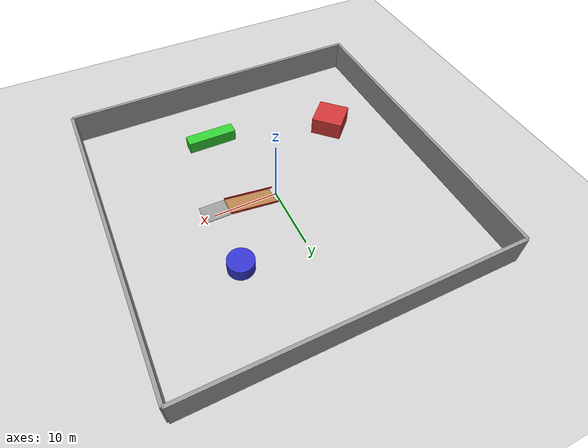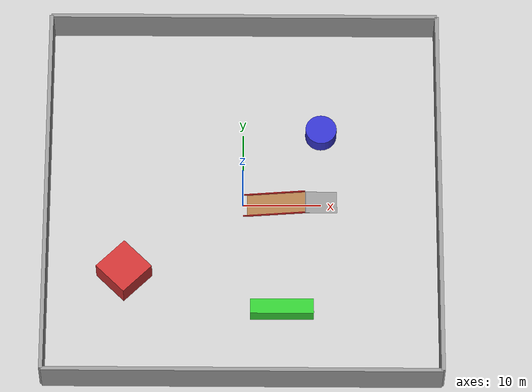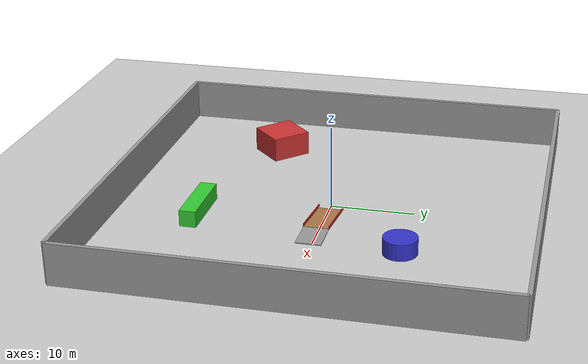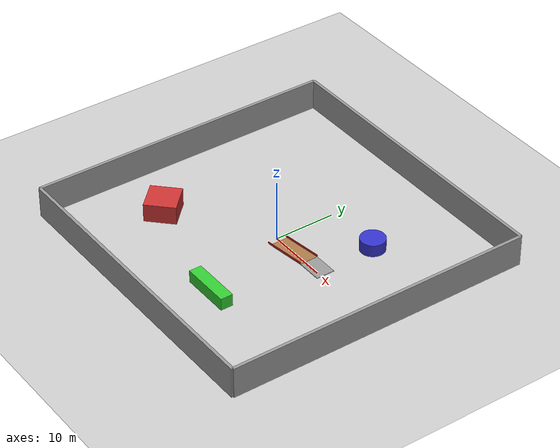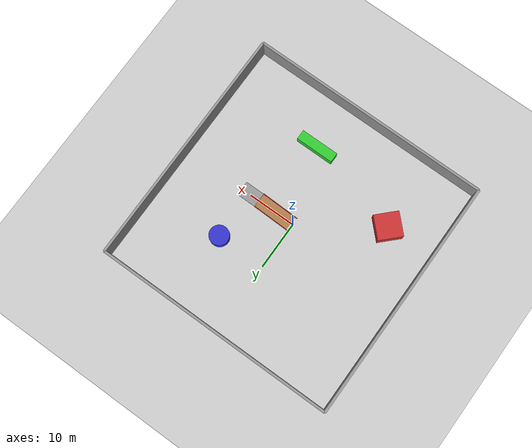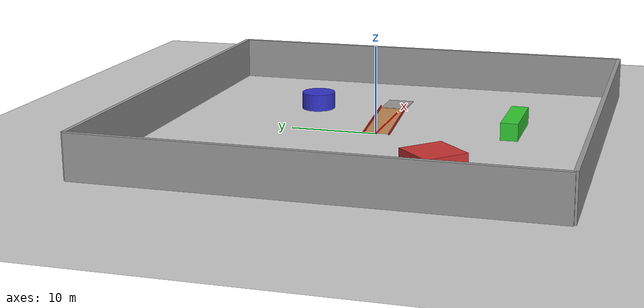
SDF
<?xml version="1.0" ?>
<sdf version="1.6">
  <world name="enclosed_large_world">
    <include>
      <uri>model://sun</uri>
    </include>
    <include>
      <uri>model://ground_plane</uri>
    </include>

    <!-- Wall North -->
    <model name="wall_north">
      <pose>0 25 2.5 0 0 0</pose>
      <link name="link">
        <collision name="collision">
          <geometry>
            <box><size>50 0.5 5</size></box>
          </geometry>
        </collision>
        <visual name="visual">
          <geometry>
            <box><size>50 0.5 5</size></box>
          </geometry>
          <material><ambient>0.6 0.6 0.6 1</ambient></material>
        </visual>
      </link>
      <static>true</static>
    </model>

    <!-- Wall South -->
    <model name="wall_south">
      <pose>0 -25 2.5 0 0 0</pose>
      <link name="link">
        <collision name="collision">
          <geometry>
            <box><size>50 0.5 5</size></box>
          </geometry>
        </collision>
        <visual name="visual">
          <geometry>
            <box><size>50 0.5 5</size></box>
          </geometry>
          <material><ambient>0.6 0.6 0.6 1</ambient></material>
        </visual>
      </link>
      <static>true</static>
    </model>

    <!-- Wall East -->
    <model name="wall_east">
      <pose>25 0 2.5 0 0 0</pose>
      <link name="link">
        <collision name="collision">
          <geometry>
            <box><size>0.5 50 5</size></box>
          </geometry>
        </collision>
        <visual name="visual">
          <geometry>
            <box><size>0.5 50 5</size></box>
          </geometry>
          <material><ambient>0.6 0.6 0.6 1</ambient></material>
        </visual>
      </link>
      <static>true</static>
    </model>

    <!-- Wall West -->
    <model name="wall_west">
      <pose>-25 0 2.5 0 0 0</pose>
      <link name="link">
        <collision name="collision">
          <geometry>
            <box><size>0.5 50 5</size></box>
          </geometry>
        </collision>
        <visual name="visual">
          <geometry>
            <box><size>0.5 50 5</size></box>
          </geometry>
          <material><ambient>0.6 0.6 0.6 1</ambient></material>
        </visual>
      </link>
      <static>true</static>
    </model>

    <!-- Some Inner Obstacles -->
    <model name="obstacle_1">
      <pose>10 10 1 0 0 0</pose>
      <link name="link">
        <collision name="collision">
          <geometry>
            <cylinder><radius>2</radius><length>2</length></cylinder>
          </geometry>
        </collision>
        <visual name="visual">
          <geometry>
            <cylinder><radius>2</radius><length>2</length></cylinder>
          </geometry>
          <material><ambient>0.2 0.2 0.8 1</ambient></material>
        </visual>
      </link>
      <static>true</static>
    </model>

    <model name="obstacle_2">
      <pose>-15 -10 1.5 0 0 0.785</pose>
      <link name="link">
        <collision name="collision">
          <geometry>
            <box><size>5 5 3</size></box>
          </geometry>
        </collision>
        <visual name="visual">
          <geometry>
            <box><size>5 5 3</size></box>
          </geometry>
          <material><ambient>0.8 0.2 0.2 1</ambient></material>
        </visual>
      </link>
      <static>true</static>
    </model>

    <model name="obstacle_3">
      <pose>5 -15 1 0 0 0</pose>
      <link name="link">
        <collision name="collision">
          <geometry>
            <box><size>8 2 2</size></box>
          </geometry>
        </collision>
        <visual name="visual">
          <geometry>
            <box><size>8 2 2</size></box>
          </geometry>
          <material><ambient>0.2 0.8 0.2 1</ambient></material>
        </visual>
      </link>
      <static>true</static>
    </model>

    <!-- 爬坡测试场地 (Ramp/Slope) -->
    <model name="ramp">
      <static>true</static>
      <!-- x y z roll pitch yaw -->
      <!-- pitch = -0.15 表示大约 8.5 度的坡度 -->
      <pose>4 0 0.4 0 -0.15 0</pose>
      <link name="link">
        <collision name="collision">
          <geometry>
            <box>
              <size>8 3 0.1</size>
            </box>
          </geometry>
          <!-- 增加摩擦力防止打滑 -->
          <surface>
            <friction>
              <ode>
                <mu>100.0</mu>
                <mu2>50.0</mu2>
              </ode>
            </friction>
          </surface>
        </collision>
        <visual name="visual">
          <geometry>
            <box>
              <size>8 3 0.1</size>
            </box>
          </geometry>
          <material>
            <script>
              <uri>file://media/materials/scripts/gazebo.material</uri>
              <name>Gazebo/Wood</name>
            </script>
          </material>
        </visual>
      </link>
    </model>

    <!-- 坡顶平台 -->
    <model name="platform">
      <static>true</static>
      <pose>10 0 1.0 0 0 0</pose>
      <link name="link">
        <collision name="collision">
          <geometry>
            <box>
              <size>4 3 0.1</size>
            </box>
          </geometry>
          <surface>
            <friction>
              <ode>
                <mu>100.0</mu>
                <mu2>50.0</mu2>
              </ode>
            </friction>
          </surface>
        </collision>
        <visual name="visual">
          <geometry>
            <box>
              <size>4 3 0.1</size>
            </box>
          </geometry>
          <material>
            <script>
              <uri>file://media/materials/scripts/gazebo.material</uri>
              <name>Gazebo/Grey</name>
            </script>
          </material>
        </visual>
      </link>
    </model>

    <!-- 防止掉落的护栏 -->
    <model name="wall_1">
      <static>true</static>
      <pose>4 1.5 0.6 0 -0.15 0</pose>
      <link name="link">
        <collision name="collision">
          <geometry>
            <box>
              <size>8 0.1 0.3</size>
            </box>
          </geometry>
        </collision>
        <visual name="visual">
          <geometry>
            <box>
              <size>8 0.1 0.3</size>
            </box>
          </geometry>
          <material>
            <script>
              <uri>file://media/materials/scripts/gazebo.material</uri>
              <name>Gazebo/Red</name>
            </script>
          </material>
        </visual>
      </link>
    </model>

    <model name="wall_2">
      <static>true</static>
      <pose>4 -1.5 0.6 0 -0.15 0</pose>
      <link name="link">
        <collision name="collision">
          <geometry>
            <box>
              <size>8 0.1 0.3</size>
            </box>
          </geometry>
        </collision>
        <visual name="visual">
          <geometry>
            <box>
              <size>8 0.1 0.3</size>
            </box>
          </geometry>
          <material>
            <script>
              <uri>file://media/materials/scripts/gazebo.material</uri>
              <name>Gazebo/Red</name>
            </script>
          </material>
        </visual>
      </link>
    </model>

  </world>
</sdf>
